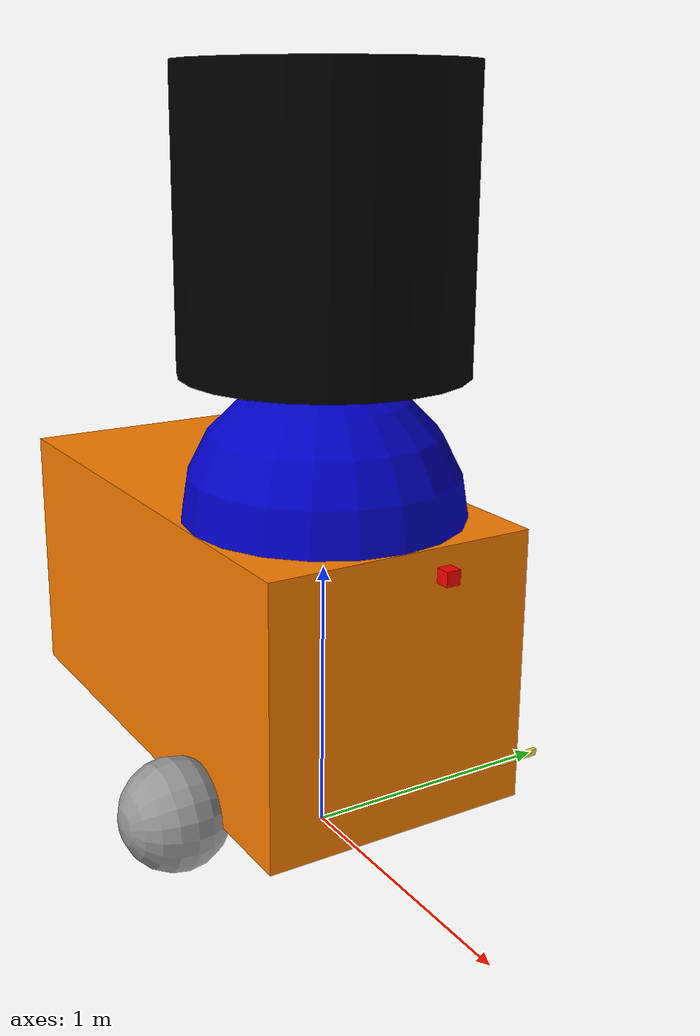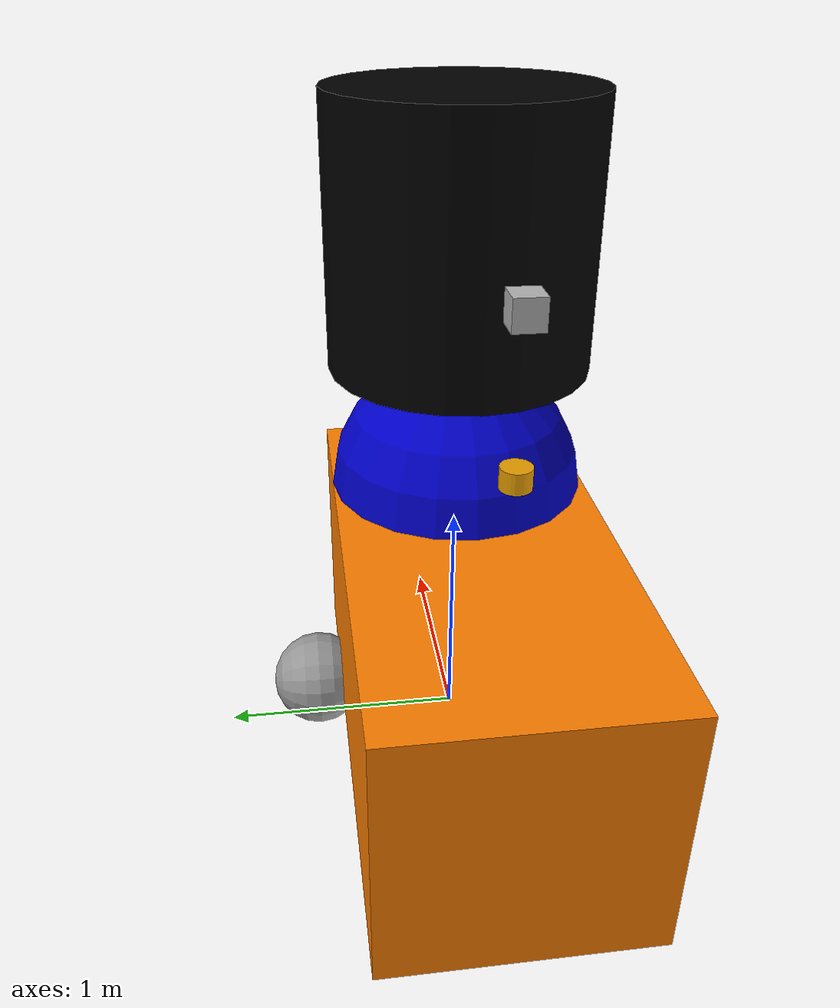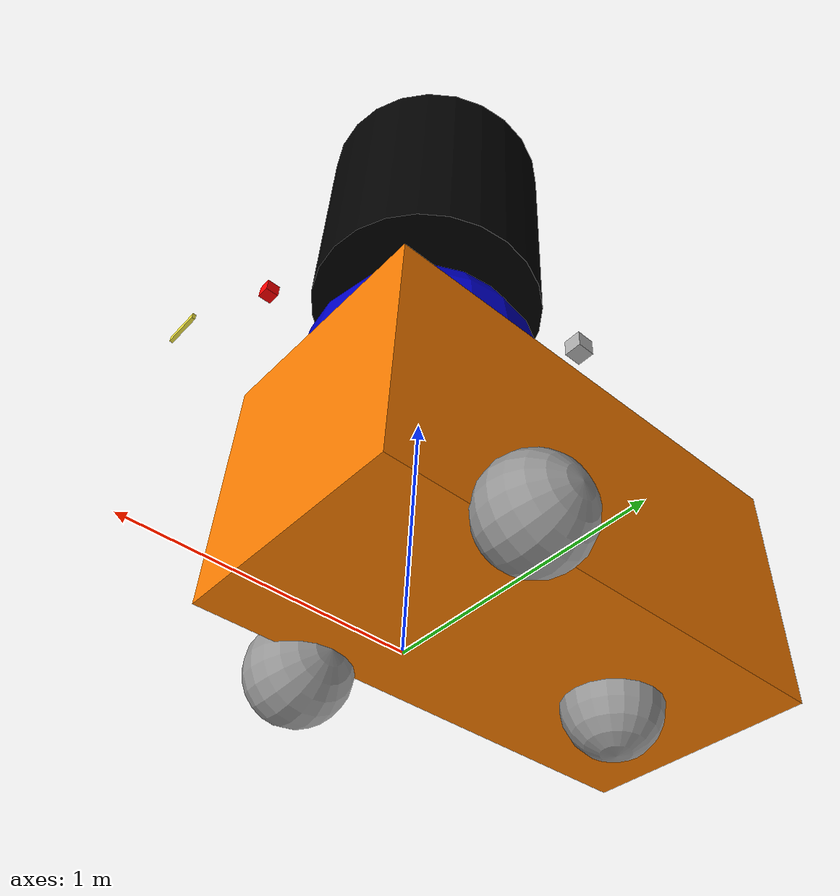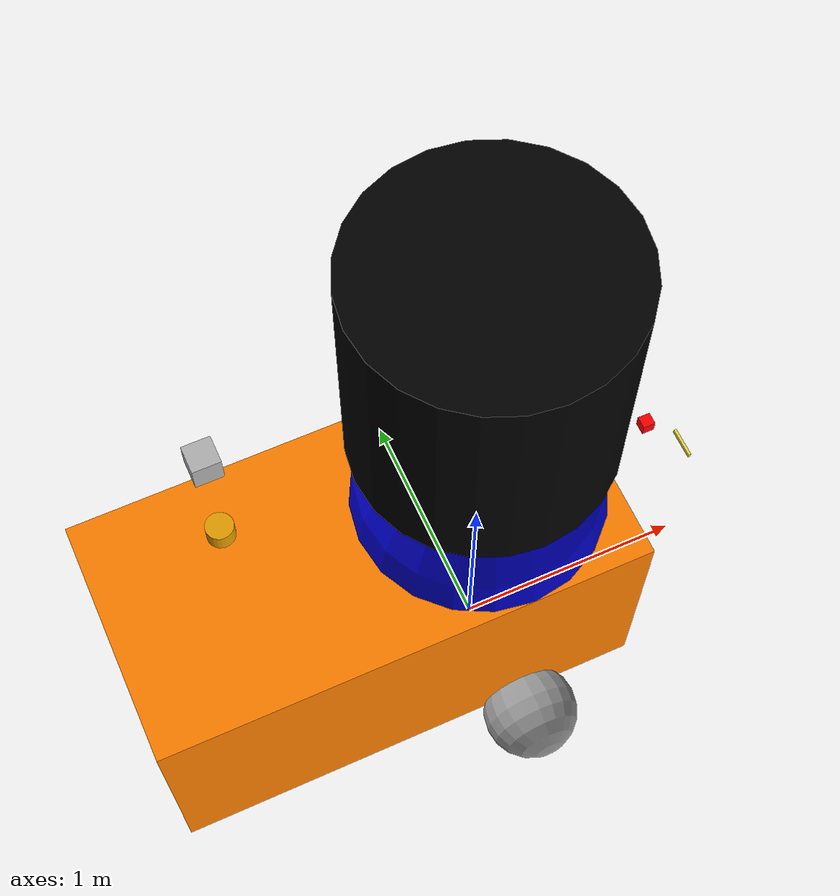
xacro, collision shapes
<?xml version="1.0"?>
<robot name="basic_shapes"
    xmlns:xacro="http://wiki.ros.org/xacro">

    <!-- basic shapes -->
    <xacro:include filename="$(find urdf_basic_shapes)/urdf/basic_shapes.urdf.xacro"/>

    <link name="base_footprint"/>

    <!-- cubeical base_link -->
    <xacro:cube name="base_link" x="2" y="1" z="1" ori="-.5 0 .5" rpy="0 0 0" rgb="Orange" m="2" friction="${standard_friction}"/>
    <joint name="cube1_joint" type="fixed">
        <parent link="base_footprint"/>
        <child link="base_link"/>
        <origin xyz="0 0 0.2" rpy="0 0 0"/>
    </joint>

    <!-- ball  -->
    <xacro:ball name="ball1" r="0.5" ori="0 0 0" rpy="0 0 0" rgb="Blue" m=".5" friction="${standard_friction}"/>
    <joint name="joint_ball1" type="fixed">
        <parent link="base_link"/>
        <child link="ball1"/>
        <origin xyz="0 0 1" rpy="0 0 0"/>
    </joint>

    <!-- cylinder -->
    <xacro:cylinder_shape name="cylinder1" r="0.5" h="1" ori="0 0 0" rpy="0 0 0" rgb="Black" m=".5" friction="${standard_friction}"/>
    <joint name="joint_cylinder1" type="fixed">
        <parent link="base_link"/>
        <child link="cylinder1"/>
        <origin xyz="0 0 2" rpy="0 0 3.1416"/>
    </joint>

    <!-- diff drive -->
    <!-- the parent link should be the center of wheel axis -->
    <xacro:include filename="$(find urdf_basic_shapes)/urdf/diff_wheel.urdf.xacro"/>
    <xacro:diff_wheel wheeldiam="0.4" wheel_separation="1.2" parent="base_link" friction="200" rgb="Grey" h=".1"/>

    <!-- caster wheel -->
    <xacro:ball name="casterwheel" r="0.2" ori="0 0 0" rpy="0 0 0" rgb="Grey" m=".5" friction="${sliding_friction}"/>
    <joint name="joint_casterwheel" type="fixed">
        <parent link="base_link"/>
        <child link="casterwheel"/>
        <origin xyz="-1 0 0" rpy="0 0 0"/>
    </joint>

    <!-- Hokuyo Laser -->
    <xacro:include filename="$(find urdf_basic_shapes)/sensors/hokuyo.urdf.xacro"/>
    <xacro:hokuyo name="hokuyo_scan" xyz="-1 0 2.05" rpy="0 0 0" parent="base_link" min_a="${-pi/2}" max_a="${pi/2}" topic="hokuyo_scan"/>

    <!-- Veldoyne Lidar  -->
    <xacro:include filename="$(find urdf_basic_shapes)/sensors/velodyne.urdf.xacro"/>
    <xacro:velodyne16 name="velodyne" xyz="-1 0 1.5" rpy="0 0 0" parent="base_link"/>

    <!-- imu -->
    <xacro:include filename="$(find urdf_basic_shapes)/sensors/imu.urdf.xacro"/>
    <xacro:imu name="imu" xyz="0 0 .5" rpy="0 0 0" parent="base_link"/>

    <!-- depth_cam -->
    <xacro:include filename="$(find urdf_basic_shapes)/sensors/depth_cam.urdf.xacro"/>
    <xacro:depth_cam name="camera" xyz="1 0 .5" rpy="0 0 0" parent="base_link"/>

    <!-- Sonar -->
    <xacro:include filename="$(find urdf_basic_shapes)/sensors/sonar.urdf.xacro"/>
    <xacro:sonar name="sonar_range" xyz=".75 0 1" rpy="0 0 0" parent="base_link" topic="sonar"/>

</robot>

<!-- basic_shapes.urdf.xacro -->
<robot name="basic_shapes" xmlns:xacro="http://wiki.ros.org/xacro">
  <!-- basic inertia -->
  <xacro:include filename="$(find urdf_basic_shapes)/urdf/inertia.urdf.xacro"/>
  <!-- basic material -->
  <xacro:include filename="$(find urdf_basic_shapes)/urdf/material.urdf.xacro"/>
  <!-- basic shapes gazebo-->
  <xacro:include filename="$(find urdf_basic_shapes)/urdf/basic_shapes.gazebo.xacro"/>

  <!-- constants -->
  <xacro:property name="update_rate" value="50" />

  <xacro:macro name="cube" params="name x y z ori rpy rgb m friction">
    <link name="${name}">
        <visual>
          <origin xyz="${ori}" rpy="${rpy}"/>
          <geometry>
              <box size="${x} ${y} ${z}"/>
          </geometry>
          <material name="${rgb}"/>
        </visual>
        <collision>
        <origin xyz="${ori}" rpy="${rpy}" />
        <geometry>
            <box size="${x} ${y} ${z}" />
        </geometry>
        </collision>
        <xacro:solid_cuboid_inertia m="${m}" h="${y}" d="${z}" w="${x}"/>
    </link>
    <xacro:gazebo_params name="${name}" rgb="${rgb}" friction="${friction}"/>
  </xacro:macro>

  <xacro:macro name="ball" params="name r ori rpy rgb m friction">
    <link name="${name}">
        <visual>
          <origin xyz="${ori}" rpy="${rpy}"/>
          <geometry>
              <sphere radius="${r}"/>
          </geometry>
          <material name="${rgb}"/>
        </visual>
        <collision>
        <origin xyz="${ori}" rpy="${rpy}" />
        <geometry>
            <sphere radius="${r}" />
        </geometry>
        </collision>
        <xacro:solid_sphere_inertia m="${m}" r="${r}"/>
    </link>
    <xacro:gazebo_params name="${name}" rgb="${rgb}" friction="${friction}"/>
  </xacro:macro>

  <xacro:macro name="cylinder_shape" params="name r h ori rpy rgb m friction">
    <link name="${name}">
        <visual>
          <origin xyz="${ori}" rpy="${rpy}"/>
          <geometry>
              <cylinder radius="${r}" length="${h}"/>
          </geometry>
          <material name="${rgb}"/>
        </visual>
        <collision>
        <origin xyz="${ori}" rpy="${rpy}" />
        <geometry>
            <cylinder radius="${r}" length="${h}" />
        </geometry>
        </collision>
        <xacro:solid_cylinder_inertia m="${m}" r="${r}" h="${h}"/>
    </link>
    <xacro:gazebo_params name="${name}" rgb="${rgb}" friction="${friction}"/>
  </xacro:macro>

  <xacro:macro name="wheel" params="name r h ori rpy rgb m friction">
    <link name="${name}">
        <visual>
          <origin xyz="${ori}" rpy="${rpy}"/>
          <geometry>
              <cylinder radius="${r}" length="${h}"/>
          </geometry>
          <material name="${rgb}"/>
        </visual>
        <collision>
        <origin xyz="${ori}" rpy="${rpy}" />
        <geometry>
            <sphere radius="${r}" />   <!--use shpere here to reduce the point of contract to a infinit small point-->
        </geometry>
        </collision>
        <xacro:solid_cylinder_inertia m="${m}" r="${r}" h="${h}"/>
    </link>
    <xacro:gazebo_params name="${name}" rgb="${rgb}" friction="${friction}"/>
  </xacro:macro>

</robot>

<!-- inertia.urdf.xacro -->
<robot xmlns:xacro="http://wiki.ros.org/xacro">
  <!-- source en.wikipedia.org/wiki/List_of_moments_of_inertia-->

  <!-- TODO Solid sphere of radius r and mass m-->
  <xacro:macro name="solid_sphere_inertia" params="m r">
  <inertial>
      <mass value="${m}" />
    <inertia  ixx="${(2*r*r*m)/5}" ixy = "0" ixz = "0"
              iyy="${(2*r*r*m)/5}" iyz = "0"
              izz="${(2*r*r*m)/5}"
     />
     </inertial>
  </xacro:macro>

  <!-- TODO Hollow sphere of radius r and mass m-->
  <xacro:macro name="hollow_sphere_inertia" params="m r">
  <inertial>
      <mass value="${m}" />
    <inertia  ixx="${(2*r*r*m)/3}" ixy = "0" ixz = "0"
              iyy="${(2*r*r*m)/3}" iyz = "0"
              izz="${(2*r*r*m)/3}"
     />
     </inertial>
  </xacro:macro>

  <!-- TODO Solid ellipsoid of semi-axes a, b, c and mass m-->
  <xacro:macro name="ellipsoid_semi_axes_inertia" params="a b c m r">
  <inertial>
      <mass value="${m}" />
    <inertia  ixx="${(m*(b*b+c*c))/5}" ixy = "0" ixz = "0"
              iyy="${(m*(a*a+c*c))/5}" iyz = "0"
              izz="${(m*(a*a+b*b))/5}"
     />
     </inertial>
  </xacro:macro>

  <!-- TODO Right circular cone with radius r, height h and mass m, about the apex -->
  <xacro:macro name="right_circular_cone_inertia" params="m r h">
  <inertial>
      <mass value="${m}" />
    <inertia  ixx="${((3*m*(h*h))/5)+((3*m*(r*r))/20)}" ixy = "0" ixz = "0"
              iyy="${((3*m*(h*h))/5)+((3*m*(r*r))/20)}" iyz = "0"
              izz="${(3*m*(r*r))/10}"
     />
     </inertial>
  </xacro:macro>

  <!-- TODO Solid cuboid of width w, height h, depth d, and mass m -->
  <!-- yes, axis in solid_cuboid_inertia are changed, w relates to X axis, d to Z axis, and h to Y axis -->
  <!-- Keep this comment -->
  <xacro:macro name="solid_cuboid_inertia" params="m h d w">
    <inertial>
      <mass value="${m}" />
        <inertia  ixx="${(m*(h*h+d*d))/12}" ixy = "0" ixz = "0"
                iyy="${(m*(w*w+d*d))/12}" iyz = "0"
                izz="${(m*(w*w+h*h))/12}"
        />
    </inertial>
  </xacro:macro>

  <!-- TODO Solid cylinder of radius r, height h and mass m -->
  <xacro:macro name="solid_cylinder_inertia" params="m r h">
  <inertial>
      <mass value="${m}" />
    <inertia  ixx="${m*(3*r*r+h*h)/12}" ixy = "0" ixz = "0"
              iyy="${m*(3*r*r+h*h)/12}" iyz = "0"
              izz="${m*r*r/2}"
     />
     </inertial>
  </xacro:macro>

    <!-- TODO Thick-walled cylindrical tube with open ends, of inner radius r1, outer radius r2, length h and mass m -->
    <xacro:macro name="thick_walled_cylinder_inertia" params="m r1 r2 h">
    <inertial>
      <mass value="${m}" />
    <inertia  ixx="${m*((3*(r1*r1+r2*r2))+(h*h))/12}" ixy = "0" ixz = "0"
              iyy="${m*((3*(r1*r1+r2*r2))+(h*h))/12}" iyz = "0"
              izz="${m*(r1*r1+r2*r2)/2}"
     />
     </inertial>
  </xacro:macro>

</robot>

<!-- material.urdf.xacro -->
<robot xmlns:xacro="http://wiki.ros.org/xacro">

  <material name="Red">
    <color rgba="1 0 0 1"/>
  </material>
  <material name="Green">
    <color rgba="0 1 0 1"/>
  </material>
  <material name="Blue">
    <color rgba="0 0 0.8 1"/>
  </material>
  <material name="Black">
    <color rgba="0 0 0 1"/>
  </material>
  <material name="White">
    <color rgba="1 1 1 1"/>
  </material>
  <material name="Gray">
    <color rgba="0.8 0.8 0.8 1"/>
  </material>
  <material name="Yellow">
    <color rgba="1 1 0 1"/>
  </material>
  <material name="Orange">
    <color rgba="1 0.5 0 1"/>
  </material>
  <material name="Brown">
    <color rgba="0.6 0.4 0.2 1"/>
  </material>
  <material name="Purple">
    <color rgba="0.5 0 0.5 1"/>
  </material>
  <material name="Cyan">
    <color rgba="0 1 1 1"/>
  </material>

</robot>

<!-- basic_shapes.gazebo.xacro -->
<robot name="basic_shapes"
  xmlns:xacro="http://www.ros.org/wiki/xacro">
  <xacro:arg name="laser_visual" default="true"/>

  <xacro:property name="update_rate" value="10" />

  <xacro:property name="standard_friction" value="0.2" />
  <xacro:property name="wheel_friction" value="10000.0" />
  <xacro:property name="sliding_friction" value="0.1" />

  <xacro:macro name="gazebo_params" params="name rgb friction">
    <gazebo reference="${name}">
      <material>Gazebo/${rgb}</material>
      <mu1>${friction}</mu1>
      <mu2>${friction}</mu2>
      <kp value="10000000.0" />
      <kd value="1.0" />
      <minDepth>0.001</minDepth>
      <maxVel>0.1</maxVel>
      <fdir1>1 0 0</fdir1>
    </gazebo>
  </xacro:macro>

  <!-- Gazebo plugin for ROS Control -->

</robot>

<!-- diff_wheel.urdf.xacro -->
<robot name="diff_wheel" xmlns:xacro="http://wiki.ros.org/xacro">

    <!-- differential drive macro -->
    <xacro:macro name="diff_wheel" params=" wheeldiam h wheel_separation parent friction rgb odom_topic:=odom pub_tf:=true">
        <xacro:wheel name="left_wheel" r="${wheeldiam/2}" h="${h}" ori="0 0 0" rpy="0 0 0" rgb="${rgb}" m="0.1" friction="${friction}"/>
        <joint name="left_wheel_joint" type="continuous">
            <axis xyz="0 0 1" rpy="0 0 0" />
            <parent link="${parent}"/>
            <child link="left_wheel"/>
            <origin xyz="0 ${wheel_separation/2} 0" rpy="${-pi/2} 0 0"/>
        </joint>

        <xacro:wheel name="right_wheel" r="${wheeldiam/2}" h="${h}" ori="0 0 0" rpy="0 0 0" rgb="${rgb}" m="0.1" friction="${friction}"/>
        <joint name="right_wheel_joint" type="continuous">
            <axis xyz="0 0 1" rpy="0 0 0" />
            <parent link="${parent}"/>
            <child link="right_wheel"/>
            <origin xyz="0 ${-wheel_separation/2} 0" rpy="${-pi/2} 0 0"/>
        </joint>

        <gazebo>
        <plugin name="diff_drive_controller" filename="libgazebo_ros_diff_drive.so">

            <!-- Plugin update rate in Hz -->
            <left_joint>left_wheel_joint</left_joint>
            <right_joint>right_wheel_joint</right_joint>

            <!-- kinematics -->
            <wheel_separation>${wheel_separation}</wheel_separation>
            <wheel_diameter>${wheeldiam}</wheel_diameter>

            <!-- limits -->
            <max_wheel_acceleration>1.0</max_wheel_acceleration>
            <max_wheel_torque>20</max_wheel_torque>

            <!-- topics and frames -->
            <command_topic>cmd_vel</command_topic>
            <odometry_topic>${odom_topic}</odometry_topic>
            <odometry_frame>odom</odometry_frame>
            <robot_base_frame>base_link</robot_base_frame>
            <!-- Odometry source, 0 for ENCODER, 1 for WORLD, defaults to WORLD -->

            <!-- output -->
            <publish_odom>true</publish_odom>
            <publish_odom_tf>${pub_tf}</publish_odom_tf>
            <publish_wheel_tf>false</publish_wheel_tf>
        </plugin>

        <plugin name="turtlebot3_joint_state" filename="libgazebo_ros_joint_state_publisher.so">
            <ros>
                <remapping>~/out:=joint_states</remapping>
            </ros>
            <update_rate>30</update_rate>
            <joint_name>left_wheel_joint</joint_name>
            <joint_name>right_wheel_joint</joint_name>
        </plugin>

        </gazebo>

    </xacro:macro>

</robot>

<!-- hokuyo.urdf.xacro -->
<robot name="hokuyo"
    xmlns:xacro="http://wiki.ros.org/xacro">
    <xacro:macro name="hokuyo" params="name parent xyz rpy min_a max_a topic=scan">
        <link name="${name}">
            <collision>
                <origin xyz="0 0 0" rpy="0 0 0"/>
                <geometry>
                    <box size="0.1 0.1 0.1"/>
                </geometry>
            </collision>

            <visual>
                <origin xyz="0 0 0" rpy="0 0 0"/>
                <geometry>
                    <mesh filename="package://urdf_basic_shapes/meshes/hokuyo.dae"/>
                </geometry>
            </visual>

            <inertial>
                <mass value="1e-5" />
                <origin xyz="0 0 0" rpy="0 0 0"/>
                <inertia ixx="1e-6" ixy="0" ixz="0" iyy="1e-6" iyz="0" izz="1e-6" />
            </inertial>
        </link>

        <joint name="${name}_joint" type="fixed">
            <axis xyz="0 1 0" />
            <origin xyz="${xyz}" rpy="${rpy}"/>
            <parent link="${parent}"/>
            <child link="${name}"/>
        </joint>

        <!-- hokuyo -->
        <gazebo reference="${name}">
            <sensor type="ray" name="${name}_hokuyo_sensor">
                <pose>0 0 0 0 0 0</pose>
                <visualize>true</visualize>
                <update_rate>10</update_rate>
                <ray>
                    <scan>
                        <horizontal>
                            <samples>720</samples>
                            <resolution>1</resolution>
                            <min_angle>${min_a}</min_angle>
                            <max_angle>${max_a}</max_angle>
                        </horizontal>
                    </scan>
                    <range>
                        <min>0.10</min>
                        <max>30.0</max>
                        <resolution>0.01</resolution>
                    </range>
                    <noise>
                        <type>gaussian</type>
                        <mean>0.0</mean>
                        <stddev>0.01</stddev>
                    </noise>
                </ray>
                <plugin name="gazebo_ros_${name}_controller" filename="libgazebo_ros_laser.so">
                    <topicName>${topic}</topicName>
                    <frameName>${name}</frameName>
                </plugin>
            </sensor>
        </gazebo>

    </xacro:macro>
</robot>

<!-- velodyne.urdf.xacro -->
<robot name="velodyne" xmlns:xacro="http://wiki.ros.org/xacro">

    <xacro:macro name="velodyne16" params="name parent xyz rpy">
        <xacro:arg name="gpu" default="false"/>
        <xacro:property name="gpu" value="$(arg gpu)" />
        <xacro:arg name="organize_cloud" default="false"/>
        <xacro:property name="organize_cloud" value="$(arg organize_cloud)" />

        <xacro:include filename="$(find velodyne_description)/urdf/VLP-16.urdf.xacro"/>
        <xacro:VLP-16 parent="${parent}" name="${name}" topic="${name}_points" organize_cloud="${organize_cloud}" hz="10" samples="440" gpu="${gpu}">
            <origin xyz="${xyz}" rpy="${rpy}" />
        </xacro:VLP-16>
    </xacro:macro>

</robot>

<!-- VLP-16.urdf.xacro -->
<robot xmlns:xacro="http://www.ros.org/wiki/xacro" name="VLP-16">
  <xacro:property name="M_PI" value="3.1415926535897931"/>
  <xacro:macro name="VLP-16" params="*origin parent:=base_link name:=velodyne topic:=/velodyne_points hz:=10 lasers:=16 samples:=1875 collision_range:=0.3 min_range:=0.9 max_range:=130.0 noise:=0.008 min_angle:=-${M_PI} max_angle:=${M_PI} gpu:=false">

    <joint name="${name}_base_mount_joint" type="fixed">
      <xacro:insert_block name="origin"/>
      <parent link="${parent}"/>
      <child link="${name}_base_link"/>
    </joint>

    <link name="${name}_base_link">
      <inertial>
        <mass value="0.83"/>
        <origin xyz="0 0 0.03585"/>
        <inertia ixx="${(0.83 * (3.0*0.0516*0.0516 + 0.0717*0.0717)) / 12.0}" ixy="0" ixz="0" iyy="${(0.83 * (3.0*0.0516*0.0516 + 0.0717*0.0717)) / 12.0}" iyz="0" izz="${0.5 * 0.83 * (0.0516*0.0516)}"/>
      </inertial>
      <visual>
        <geometry>
          <mesh filename="file://$(find velodyne_description)/meshes/VLP16_base_1.dae" />
        </geometry>
      </visual>
      <visual>
        <geometry>
          <mesh filename="file://$(find velodyne_description)/meshes/VLP16_base_2.dae" />
        </geometry>
      </visual>
      <collision>
        <origin rpy="0 0 0" xyz="0 0 0.03585"/>
        <geometry>
          <cylinder radius="0.0516" length="0.0717"/>
        </geometry>
      </collision>
    </link>

    <joint name="${name}_base_scan_joint" type="fixed">
      <origin xyz="0 0 0.0377" rpy="0 0 0"/>
      <parent link="${name}_base_link"/>
      <child link="${name}"/>
    </joint>

    <link name="${name}">
      <inertial>
        <mass value="0.01"/>
        <origin xyz="0 0 0"/>
        <inertia ixx="1e-7" ixy="0" ixz="0" iyy="1e-7" iyz="0" izz="1e-7"/>
      </inertial>
      <visual>
        <origin xyz="0 0 -0.0377"/>
        <geometry>
          <mesh filename="$(find velodyne_description)/meshes/VLP16_scan.dae" />
        </geometry>
      </visual>
    </link>

    <!-- Gazebo requires the velodyne_gazebo_plugins package -->
    <gazebo reference="${name}">
      <xacro:if value="${gpu}">
        <sensor type="gpu_ray" name="${name}-VLP16">
          <pose>0 0 0 0 0 0</pose>
          <visualize>false</visualize>
          <update_rate>${hz}</update_rate>
          <ray>
            <scan>
              <horizontal>
                <samples>${samples}</samples>
                <resolution>1</resolution>
                <min_angle>${min_angle}</min_angle>
                <max_angle>${max_angle}</max_angle>
              </horizontal>
              <vertical>
                <samples>${lasers}</samples>
                <resolution>1</resolution>
                <min_angle>-${15.0*M_PI/180.0}</min_angle>
                <max_angle>
                  ${15.0*M_PI/180.0}</max_angle>
              </vertical>
            </scan>
            <range>
              <min>${collision_range}</min>
              <max>${max_range+1}</max>
              <resolution>0.001</resolution>
            </range>
            <noise>
              <type>gaussian</type>
              <mean>0.0</mean>
              <stddev>0.0</stddev>
            </noise>
          </ray>
          <plugin name="gazebo_ros_laser_controller" filename="libgazebo_ros_velodyne_laser.so">
            <ros>
                <remapping>~/out:=${topic}</remapping>
            </ros>
            <frame_name>${name}</frame_name>
            <min_range>${min_range}</min_range>
            <max_range>${max_range}</max_range>
            <gaussianNoise>${noise}</gaussianNoise>
          </plugin>
        </sensor>
      </xacro:if>
      <xacro:unless value="${gpu}">
        <sensor type="ray" name="${name}-VLP16">
          <pose>0 0 0 0 0 0</pose>
          <visualize>false</visualize>
          <update_rate>${hz}</update_rate>
          <ray>
            <scan>
              <horizontal>
                <samples>${samples}</samples>
                <resolution>1</resolution>
                <min_angle>${min_angle}</min_angle>
                <max_angle>${max_angle}</max_angle>
              </horizontal>
              <vertical>
                <samples>${lasers}</samples>
                <resolution>1</resolution>
                <min_angle>-${15.0*M_PI/180.0}</min_angle>
                <max_angle>
                  ${15.0*M_PI/180.0}</max_angle>
              </vertical>
            </scan>
            <range>
              <min>${collision_range}</min>
              <max>${max_range+1}</max>
              <resolution>0.001</resolution>
            </range>
            <noise>
              <type>gaussian</type>
              <mean>0.0</mean>
              <stddev>0.05</stddev>
            </noise>
          </ray>
          <plugin name="gazebo_ros_laser_controller" filename="libgazebo_ros_velodyne_laser.so">
            <ros>
                <remapping>~/out:=${topic}</remapping>
            </ros>
            <frame_name>${name}</frame_name>
            <min_range>${min_range}</min_range>
            <max_range>${max_range}</max_range>
            <gaussianNoise>${noise}</gaussianNoise>
          </plugin>
        </sensor>
      </xacro:unless>
    </gazebo>

  </xacro:macro>
</robot>

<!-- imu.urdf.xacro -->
<robot name="imu" xmlns:xacro="http://wiki.ros.org/xacro">
    <xacro:macro name="imu" params="name parent xyz rpy">

        <link name="${name}" />

        <joint name="${name}_joint" type="fixed">
            <axis xyz="0 0 0" />
            <origin xyz="${xyz}" rpy="${rpy}" />
            <parent link="${parent}" />
            <child link="${name}" />
        </joint>

        <!-- imu -->
        <gazebo reference="${name}">
            <gravity>true</gravity>
            <sensor name="${name}" type="imu">
                <always_on>true</always_on>
                <update_rate>200</update_rate>
                <visualize>true</visualize>
                <topic>${name}</topic>
                <plugin filename="libgazebo_ros_imu_sensor.so" name="imu_plugin">
                    <topicName>${name}</topicName>
                    <remapping>~/out:=${name}</remapping>
                    <bodyName>${name}</bodyName>
                    <updateRateHZ>10.0</updateRateHZ>
                    <gaussianNoise>0.0</gaussianNoise>
                    <xyzOffset>0 0 0</xyzOffset>
                    <rpyOffset>0 0 0</rpyOffset>
                    <frame_name>${name}</frame_name>
                    <initialOrientationAsReference>false</initialOrientationAsReference>
                </plugin>
                <pose>0 0 0 0 0 0</pose>
            </sensor>
        </gazebo>

    </xacro:macro>
</robot>

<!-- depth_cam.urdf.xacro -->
<robot name="depth_cam"
  xmlns:xacro="http://wiki.ros.org/xacro">
  <xacro:macro name="depth_cam" params="name parent xyz rpy">

    <xacro:property name="r200_cam_color_px" value="0.005"/>
    <xacro:property name="r200_cam_color_py" value="0.018"/>
    <xacro:property name="r200_cam_color_pz" value="0.013"/>
    <xacro:property name="r200_cam_depth_offset" value="0.01"/>
    <xacro:arg name="camera_visual" default="false"/>

    <joint name="base_${name}_joint" type="fixed">
      <origin xyz="${xyz}" rpy="${rpy}" />
      <parent link="${parent}"/>
      <child link="${name}_link" />
    </joint>
    <link name="${name}_link">
      <visual>
        <origin xyz="0 0 0" rpy="1.57 0 1.57"/>
        <geometry>
          <mesh filename="package://urdf_basic_shapes/meshes/intel_d435.dae" />
        </geometry>
      </visual>
      <collision>
        <origin xyz="0.003 0.065 0.007" rpy="0 0 0"/>
        <geometry>
          <box size="0.012 0.132 0.020"/>
        </geometry>
      </collision>
    </link>

    <joint name="${name}_color_joint" type="fixed">
      <origin xyz="${r200_cam_color_px} ${r200_cam_color_py} ${r200_cam_color_pz}" rpy="0 0 0"/>
      <parent link="${name}_link"/>
      <child link="${name}_color_frame"/>
    </joint>
    <link name="${name}_color_frame"/>

    <joint name="${name}_color_optical_joint" type="fixed">
      <origin xyz="0 0 0" rpy="-1.57 0 -1.57"/>
      <parent link="${name}_color_frame"/>
      <child link="${name}_color_optical_frame"/>
    </joint>
    <link name="${name}_color_optical_frame"/>

    <joint name="${name}_depth_joint" type="fixed">
      <origin xyz="${r200_cam_color_px} ${r200_cam_color_py + r200_cam_depth_offset} ${r200_cam_color_pz}" rpy="0 0 0"/>

      <parent link="${name}_link"/>
      <child link="${name}_depth_frame"/>
    </joint>
    <link name="${name}_depth_frame"/>

    <joint name="${name}_depth_optical_joint" type="fixed">
      <origin xyz="0 0 0" rpy="-1.57 0 -1.57"/>
      <parent link="${name}_depth_frame"/>
      <child link="${name}_depth_optical_frame"/>
    </joint>
    <link name="${name}_depth_optical_frame"/>

    <gazebo reference="${name}_color_frame">
      <sensor type="depth" name="realsense_R200">

        <always_on>true</always_on>
        <visualize>$(arg camera_visual)</visualize>
        <camera>
          <horizontal_fov>1.3439</horizontal_fov>
          <image>
            <width>1920</width>
            <height>1080</height>
            <format>R8G8B8</format>
          </image>
          <depth_camera></depth_camera>
          <clip>
            <near>0.03</near>
            <far>100</far>
          </clip>
        </camera>
        <plugin name="${name}_controller" filename="libgazebo_ros_openni_kinect.so">
          <baseline>0.2</baseline>
          <alwaysOn>true</alwaysOn>
          <updateRate>30.0</updateRate>
          <cameraName>${name}</cameraName>
          <frameName>${name}_depth_optical_frame</frameName>
          <imageTopicName>color/image_raw</imageTopicName>
          <depthImageTopicName>depth/image_raw</depthImageTopicName>
          <pointCloudTopicName>depth/color/points</pointCloudTopicName>
          <cameraInfoTopicName>color/camera_info</cameraInfoTopicName>
          <depthImageCameraInfoTopicName>depth/camera_info</depthImageCameraInfoTopicName>
          <pointCloudCutoff>0.4</pointCloudCutoff>
          <hackBaseline>0.07</hackBaseline>
          <distortionK1>0.0</distortionK1>
          <distortionK2>0.0</distortionK2>
          <distortionK3>0.0</distortionK3>
          <distortionT1>0.0</distortionT1>
          <distortionT2>0.0</distortionT2>

          <CxPrime>0.0</CxPrime>
          <Cx>0.0</Cx>
          <Cy>0.0</Cy>
          <focalLength>0</focalLength>
          <hackBaseline>0</hackBaseline>
        </plugin>
      </sensor>
    </gazebo>

  </xacro:macro>
</robot>

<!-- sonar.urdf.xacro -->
<robot name="hokuyo"
    xmlns:xacro="http://wiki.ros.org/xacro">
    <xacro:macro name="sonar" params="name parent xyz rpy min_a=-0.14835 max_a=0.14835 topic=sonar">
        <xacro:cube name="${name}" x="0.05" y="0.05" z="0.05" ori="-.025 0 0" rpy="0 0 0" rgb="Red" m="0.02" friction="${standard_friction}"/>

        <joint name="${name}_joint" type="fixed">
            <origin xyz="${xyz}" rpy="${rpy}"/>
            <parent link="${parent}"/>
            <child link="${name}"/>
        </joint>

        <!-- sonar -->
        <gazebo reference="${name}">
            <sensor type="ray" name="TeraRanger">
                <pose>0 0 0 0 0 0</pose>
                <visualize>false</visualize>
                <update_rate>50</update_rate>
                <ray>
                    <scan>
                        <horizontal>
                            <samples>10</samples>
                            <resolution>1</resolution>
                            <min_angle>${min_a}</min_angle>
                            <max_angle>${max_a}</max_angle>
                        </horizontal>
                        <vertical>
                            <samples>10</samples>
                            <resolution>1</resolution>
                            <min_angle>${min_a}</min_angle>
                            <max_angle>${max_a}</max_angle>
                        </vertical>
                    </scan>
                    <range>
                        <min>0.01</min>
                        <max>2</max>
                        <resolution>0.02</resolution>
                    </range>
                </ray>
                <plugin filename="libgazebo_ros_range.so" name="gazebo_ros_range">
                    <gaussianNoise>0.05</gaussianNoise>
                    <alwaysOn>true</alwaysOn>
                    <updateRate>50</updateRate>
                    <topicName>${topic}</topicName>
                    <frameName>${name}</frameName>
                    <radiation>INFRARED</radiation>
                    <fov>0.2967</fov>
                </plugin>
            </sensor>
        </gazebo>

    </xacro:macro>
</robot>
